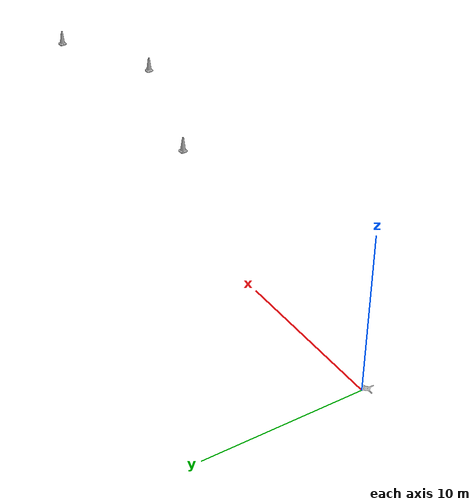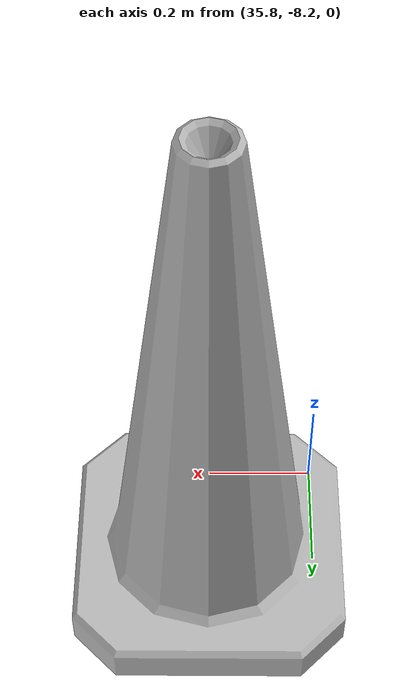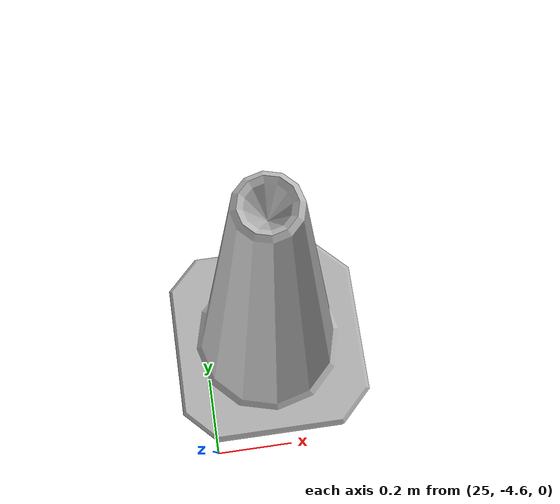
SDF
<sdf version="1.6">
 <world name="default">
  <light name="sun" type="directional">
   <pose>0 0 10 0 -0 0</pose>
   <diffuse>0.8 0.8 0.8 1</diffuse>
   <specular>0.2 0.2 0.2 1</specular>
   <attenuation>
    <range>1000</range>
    <constant>0.9</constant>
    <linear>0.01</linear>
    <quadratic>0.001</quadratic>
   </attenuation>
   <direction>-0.5 0.1 -0.9</direction>
  </light>
  <gravity>0 0 -9.8</gravity>
  <magnetic_field>6e-06 2.3e-05 -4.2e-05</magnetic_field>
  <atmosphere type="adiabatic"/>
  <physics name="default_physics" default="0" type="ode">
   <max_step_size>0.001</max_step_size>
   <real_time_factor>1</real_time_factor>
   <real_time_update_rate>1000</real_time_update_rate>
  </physics>
  <scene><ambient>0.4 0.4 0.4 1</ambient><background>0.7 0.7 0.7 1</background><shadows>1</shadows></scene>
  <spherical_coordinates>
   <surface_model>EARTH_WGS84</surface_model>
   <latitude_deg>0</latitude_deg>
   <longitude_deg>0</longitude_deg>
   <elevation>0</elevation>
   <heading_deg>0</heading_deg>
  </spherical_coordinates>
  <model name="cloverleaf_interchange">
   <static>1</static>
   <link name="link">
    <collision name="collision">
     <geometry>
      <mesh>
       <uri>model://cloverleaf_interchange/meshes/cloverleaf.obj</uri>
       <scale>0.0254 0.0254 0.0254</scale>
      </mesh>
     </geometry>
    </collision>
    <visual name="visual">
     <geometry>
      <mesh>
       <uri>model://cloverleaf_interchange/meshes/cloverleaf.obj</uri>
       <scale>0.0254 0.0254 0.0254</scale>
      </mesh>
     </geometry>
    </visual>
   </link>
  </model>
  <model name="Construction Cone">
   <link name="link">
    <collision name="collision">
     <geometry>
      <mesh><scale>10 10 10</scale><uri>model://construction_cone/meshes/construction_cone.dae</uri></mesh>
     </geometry>
    </collision>
    <visual name="visual">
     <geometry>
      <mesh><scale>10 10 10</scale><uri>model://construction_cone/meshes/construction_cone.dae</uri></mesh>
     </geometry>
    </visual>
    <inertial>
     <inertia><ixx>1</ixx><ixy>0</ixy><ixz>0</ixz><iyy>1</iyy><iyz>0</iyz><izz>1</izz></inertia>
     <mass>1</mass>
    </inertial>
   </link>
   <pose>25.1747 -4.31923 -0 1e-06 -0 0</pose>
  </model>
  <model name="Construction Cone_0">
   <link name="link">
    <collision name="collision">
     <geometry>
      <mesh><scale>10 10 10</scale><uri>model://construction_cone/meshes/construction_cone.dae</uri></mesh>
     </geometry>
    </collision>
    <visual name="visual">
     <geometry>
      <mesh><scale>10 10 10</scale><uri>model://construction_cone/meshes/construction_cone.dae</uri></mesh>
     </geometry>
    </visual>
    <inertial>
     <inertia><ixx>1</ixx><ixy>0</ixy><ixz>0</ixz><iyy>1</iyy><iyz>0</iyz><izz>1</izz></inertia>
     <mass>1</mass>
    </inertial>
   </link>
   <pose>36 -8 0 0 -0 0</pose>
  </model>
  <model name="Construction Cone_1">
   <link name="link">
    <collision name="collision">
     <geometry>
      <mesh><scale>10 10 10</scale><uri>model://construction_cone/meshes/construction_cone.dae</uri></mesh>
     </geometry>
    </collision>
    <visual name="visual">
     <geometry>
      <mesh><scale>10 10 10</scale><uri>model://construction_cone/meshes/construction_cone.dae</uri></mesh>
     </geometry>
    </visual>
    <inertial>
     <inertia><ixx>1</ixx><ixy>0</ixy><ixz>0</ixz><iyy>1</iyy><iyz>0</iyz><izz>1</izz></inertia>
     <mass>1</mass>
    </inertial>
   </link>
   <pose>43.074 -4.5 0 0 -0 0</pose>
  </model>
 </world>
</sdf>
